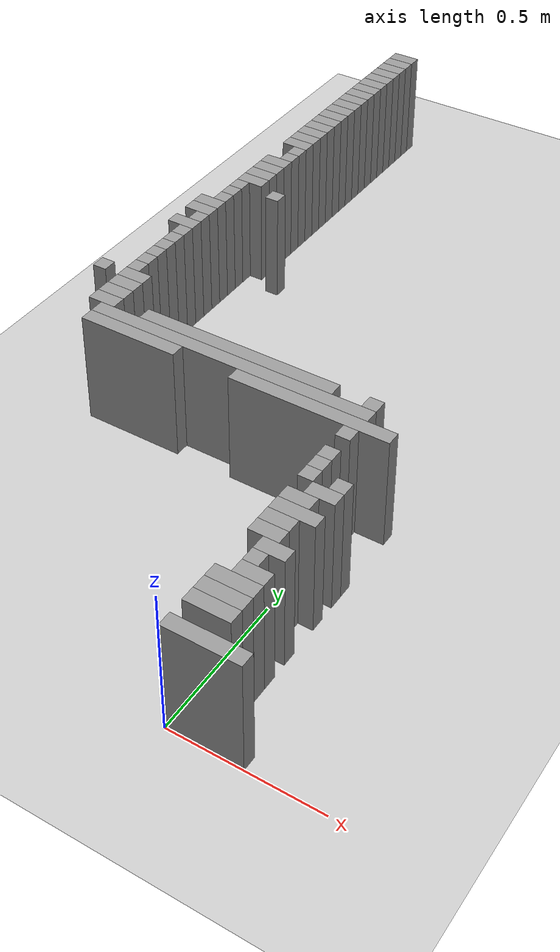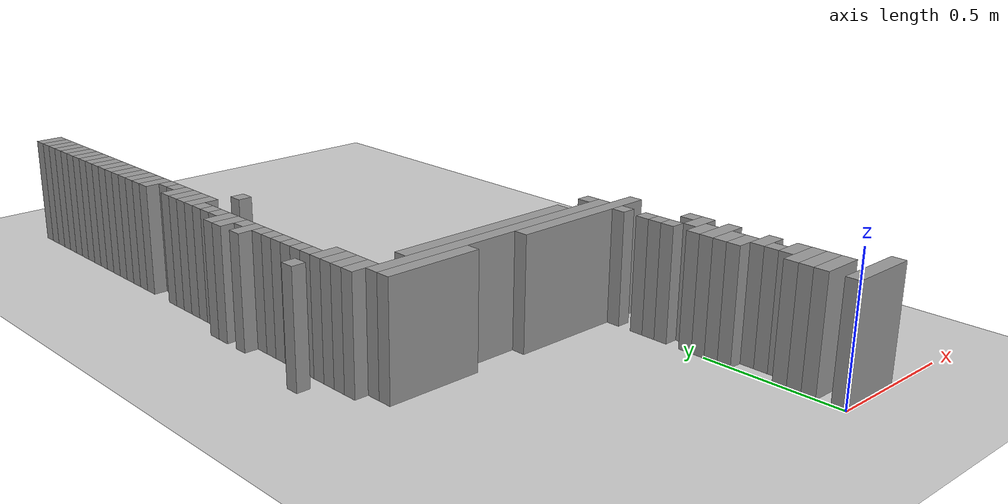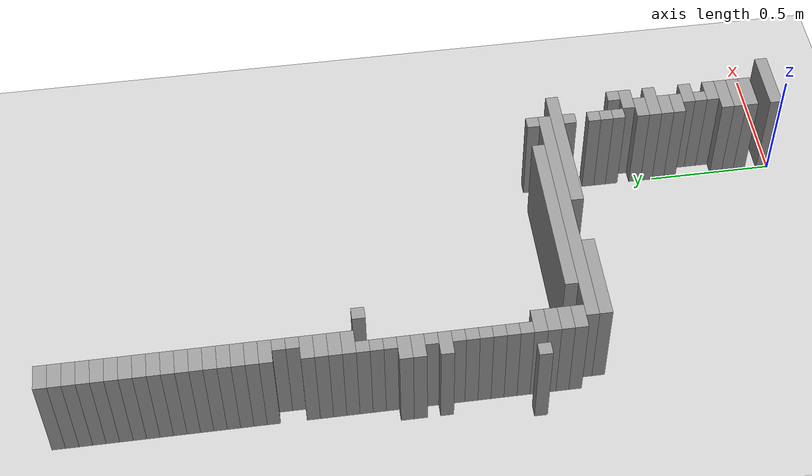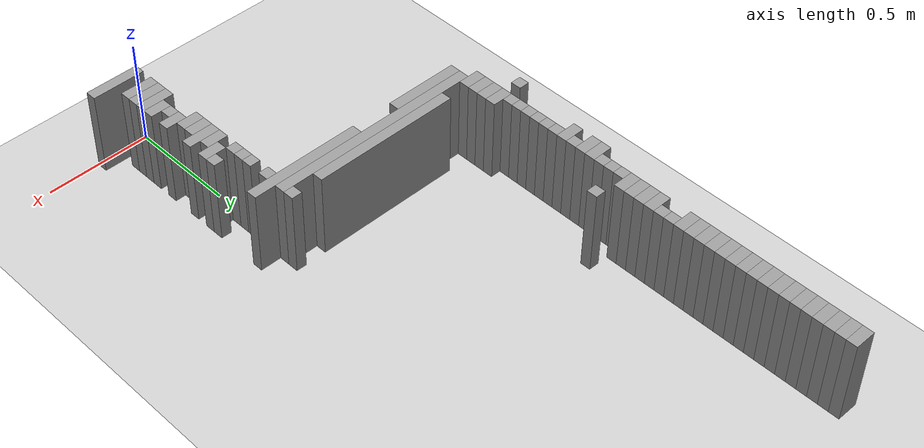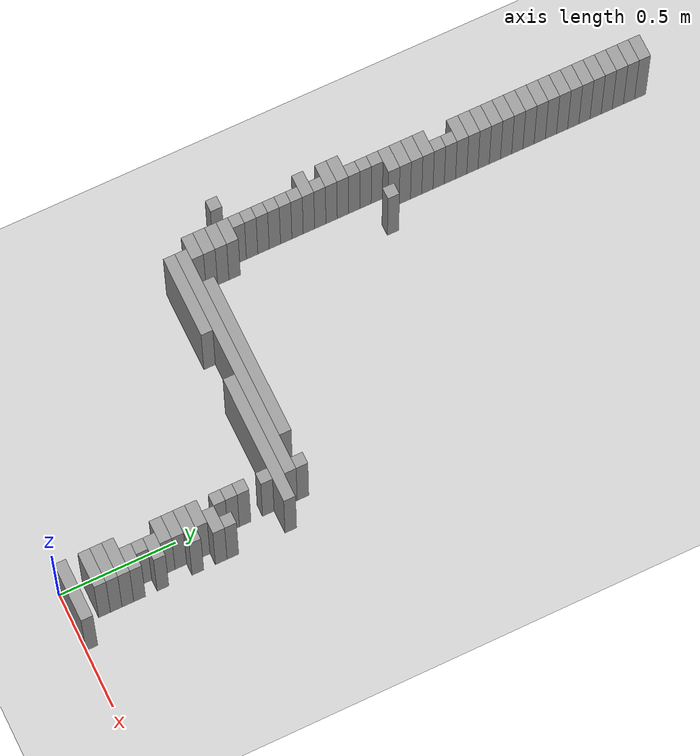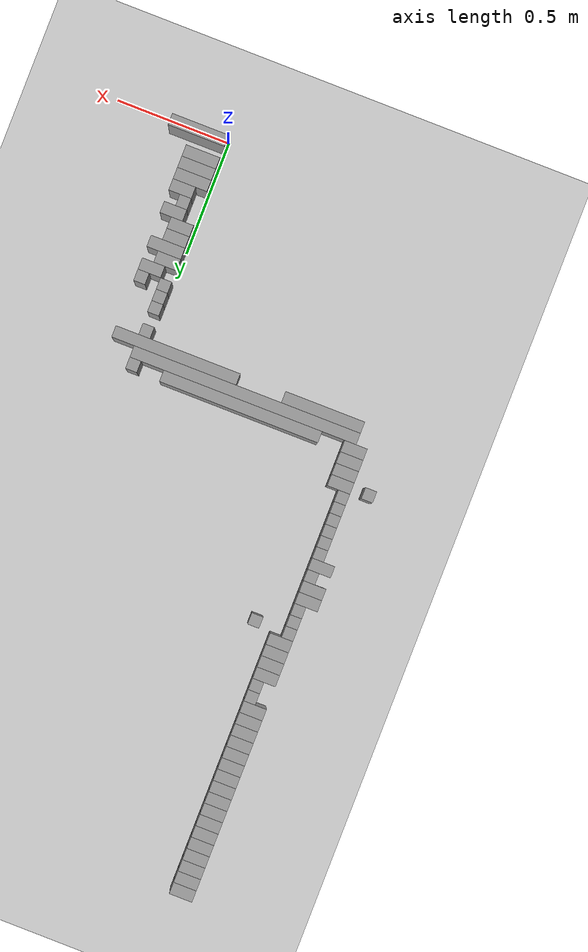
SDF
<sdf version="1.6">
 <world name="parking_mission">
  <include><uri>model://sun</uri></include>
  <include><uri>model://ground_plane</uri></include>
  <model name="wall_191">
   <static>true</static>
   <pose>-0.9500 2.9750 0.2000 0 0 0</pose>
   <link name="link">
    <collision name="collision">
     <geometry><box><size>0.1000 0.0500 0.4000</size></box></geometry>
     <surface>
      <contact><ode><kp>20000.0</kp><kd>10.0</kd><max_vel>0.5</max_vel><min_depth>0.001</min_depth></ode></contact>
      <friction><ode><mu>1.0</mu><mu2>1.0</mu2></ode></friction>
     </surface>
    </collision>
    <visual name="visual">
     <geometry><box><size>0.1000 0.0500 0.4000</size></box></geometry>
     <material>
      <script><name>Gazebo/Grey</name><uri>file://media/materials/scripts/gazebo.material</uri></script>
     </material>
    </visual>
   </link>
  </model>
  <model name="wall_195">
   <static>true</static>
   <pose>-0.9500 2.9250 0.2000 0 0 0</pose>
   <link name="link">
    <collision name="collision">
     <geometry><box><size>0.1000 0.0500 0.4000</size></box></geometry>
     <surface>
      <contact><ode><kp>20000.0</kp><kd>10.0</kd><max_vel>0.5</max_vel><min_depth>0.001</min_depth></ode></contact>
      <friction><ode><mu>1.0</mu><mu2>1.0</mu2></ode></friction>
     </surface>
    </collision>
    <visual name="visual">
     <geometry><box><size>0.1000 0.0500 0.4000</size></box></geometry>
     <material>
      <script><name>Gazebo/Grey</name><uri>file://media/materials/scripts/gazebo.material</uri></script>
     </material>
    </visual>
   </link>
  </model>
  <model name="wall_199">
   <static>true</static>
   <pose>-0.9500 2.8750 0.2000 0 0 0</pose>
   <link name="link">
    <collision name="collision">
     <geometry><box><size>0.1000 0.0500 0.4000</size></box></geometry>
     <surface>
      <contact><ode><kp>20000.0</kp><kd>10.0</kd><max_vel>0.5</max_vel><min_depth>0.001</min_depth></ode></contact>
      <friction><ode><mu>1.0</mu><mu2>1.0</mu2></ode></friction>
     </surface>
    </collision>
    <visual name="visual">
     <geometry><box><size>0.1000 0.0500 0.4000</size></box></geometry>
     <material>
      <script><name>Gazebo/Grey</name><uri>file://media/materials/scripts/gazebo.material</uri></script>
     </material>
    </visual>
   </link>
  </model>
  <model name="wall_204">
   <static>true</static>
   <pose>-0.9500 2.8250 0.2000 0 0 0</pose>
   <link name="link">
    <collision name="collision">
     <geometry><box><size>0.1000 0.0500 0.4000</size></box></geometry>
     <surface>
      <contact><ode><kp>20000.0</kp><kd>10.0</kd><max_vel>0.5</max_vel><min_depth>0.001</min_depth></ode></contact>
      <friction><ode><mu>1.0</mu><mu2>1.0</mu2></ode></friction>
     </surface>
    </collision>
    <visual name="visual">
     <geometry><box><size>0.1000 0.0500 0.4000</size></box></geometry>
     <material>
      <script><name>Gazebo/Grey</name><uri>file://media/materials/scripts/gazebo.material</uri></script>
     </material>
    </visual>
   </link>
  </model>
  <model name="wall_210">
   <static>true</static>
   <pose>-0.9500 2.7750 0.2000 0 0 0</pose>
   <link name="link">
    <collision name="collision">
     <geometry><box><size>0.1000 0.0500 0.4000</size></box></geometry>
     <surface>
      <contact><ode><kp>20000.0</kp><kd>10.0</kd><max_vel>0.5</max_vel><min_depth>0.001</min_depth></ode></contact>
      <friction><ode><mu>1.0</mu><mu2>1.0</mu2></ode></friction>
     </surface>
    </collision>
    <visual name="visual">
     <geometry><box><size>0.1000 0.0500 0.4000</size></box></geometry>
     <material>
      <script><name>Gazebo/Grey</name><uri>file://media/materials/scripts/gazebo.material</uri></script>
     </material>
    </visual>
   </link>
  </model>
  <model name="wall_215">
   <static>true</static>
   <pose>-0.9500 2.7250 0.2000 0 0 0</pose>
   <link name="link">
    <collision name="collision">
     <geometry><box><size>0.1000 0.0500 0.4000</size></box></geometry>
     <surface>
      <contact><ode><kp>20000.0</kp><kd>10.0</kd><max_vel>0.5</max_vel><min_depth>0.001</min_depth></ode></contact>
      <friction><ode><mu>1.0</mu><mu2>1.0</mu2></ode></friction>
     </surface>
    </collision>
    <visual name="visual">
     <geometry><box><size>0.1000 0.0500 0.4000</size></box></geometry>
     <material>
      <script><name>Gazebo/Grey</name><uri>file://media/materials/scripts/gazebo.material</uri></script>
     </material>
    </visual>
   </link>
  </model>
  <model name="wall_220">
   <static>true</static>
   <pose>-0.9500 2.6750 0.2000 0 0 0</pose>
   <link name="link">
    <collision name="collision">
     <geometry><box><size>0.1000 0.0500 0.4000</size></box></geometry>
     <surface>
      <contact><ode><kp>20000.0</kp><kd>10.0</kd><max_vel>0.5</max_vel><min_depth>0.001</min_depth></ode></contact>
      <friction><ode><mu>1.0</mu><mu2>1.0</mu2></ode></friction>
     </surface>
    </collision>
    <visual name="visual">
     <geometry><box><size>0.1000 0.0500 0.4000</size></box></geometry>
     <material>
      <script><name>Gazebo/Grey</name><uri>file://media/materials/scripts/gazebo.material</uri></script>
     </material>
    </visual>
   </link>
  </model>
  <model name="wall_225">
   <static>true</static>
   <pose>-0.9500 2.6250 0.2000 0 0 0</pose>
   <link name="link">
    <collision name="collision">
     <geometry><box><size>0.1000 0.0500 0.4000</size></box></geometry>
     <surface>
      <contact><ode><kp>20000.0</kp><kd>10.0</kd><max_vel>0.5</max_vel><min_depth>0.001</min_depth></ode></contact>
      <friction><ode><mu>1.0</mu><mu2>1.0</mu2></ode></friction>
     </surface>
    </collision>
    <visual name="visual">
     <geometry><box><size>0.1000 0.0500 0.4000</size></box></geometry>
     <material>
      <script><name>Gazebo/Grey</name><uri>file://media/materials/scripts/gazebo.material</uri></script>
     </material>
    </visual>
   </link>
  </model>
  <model name="wall_231">
   <static>true</static>
   <pose>-0.9500 2.5750 0.2000 0 0 0</pose>
   <link name="link">
    <collision name="collision">
     <geometry><box><size>0.1000 0.0500 0.4000</size></box></geometry>
     <surface>
      <contact><ode><kp>20000.0</kp><kd>10.0</kd><max_vel>0.5</max_vel><min_depth>0.001</min_depth></ode></contact>
      <friction><ode><mu>1.0</mu><mu2>1.0</mu2></ode></friction>
     </surface>
    </collision>
    <visual name="visual">
     <geometry><box><size>0.1000 0.0500 0.4000</size></box></geometry>
     <material>
      <script><name>Gazebo/Grey</name><uri>file://media/materials/scripts/gazebo.material</uri></script>
     </material>
    </visual>
   </link>
  </model>
  <model name="wall_236">
   <static>true</static>
   <pose>-0.9500 2.5250 0.2000 0 0 0</pose>
   <link name="link">
    <collision name="collision">
     <geometry><box><size>0.1000 0.0500 0.4000</size></box></geometry>
     <surface>
      <contact><ode><kp>20000.0</kp><kd>10.0</kd><max_vel>0.5</max_vel><min_depth>0.001</min_depth></ode></contact>
      <friction><ode><mu>1.0</mu><mu2>1.0</mu2></ode></friction>
     </surface>
    </collision>
    <visual name="visual">
     <geometry><box><size>0.1000 0.0500 0.4000</size></box></geometry>
     <material>
      <script><name>Gazebo/Grey</name><uri>file://media/materials/scripts/gazebo.material</uri></script>
     </material>
    </visual>
   </link>
  </model>
  <model name="wall_241">
   <static>true</static>
   <pose>-0.9500 2.4750 0.2000 0 0 0</pose>
   <link name="link">
    <collision name="collision">
     <geometry><box><size>0.1000 0.0500 0.4000</size></box></geometry>
     <surface>
      <contact><ode><kp>20000.0</kp><kd>10.0</kd><max_vel>0.5</max_vel><min_depth>0.001</min_depth></ode></contact>
      <friction><ode><mu>1.0</mu><mu2>1.0</mu2></ode></friction>
     </surface>
    </collision>
    <visual name="visual">
     <geometry><box><size>0.1000 0.0500 0.4000</size></box></geometry>
     <material>
      <script><name>Gazebo/Grey</name><uri>file://media/materials/scripts/gazebo.material</uri></script>
     </material>
    </visual>
   </link>
  </model>
  <model name="wall_245">
   <static>true</static>
   <pose>-0.9500 2.4250 0.2000 0 0 0</pose>
   <link name="link">
    <collision name="collision">
     <geometry><box><size>0.1000 0.0500 0.4000</size></box></geometry>
     <surface>
      <contact><ode><kp>20000.0</kp><kd>10.0</kd><max_vel>0.5</max_vel><min_depth>0.001</min_depth></ode></contact>
      <friction><ode><mu>1.0</mu><mu2>1.0</mu2></ode></friction>
     </surface>
    </collision>
    <visual name="visual">
     <geometry><box><size>0.1000 0.0500 0.4000</size></box></geometry>
     <material>
      <script><name>Gazebo/Grey</name><uri>file://media/materials/scripts/gazebo.material</uri></script>
     </material>
    </visual>
   </link>
  </model>
  <model name="wall_249">
   <static>true</static>
   <pose>-0.9500 2.3750 0.2000 0 0 0</pose>
   <link name="link">
    <collision name="collision">
     <geometry><box><size>0.1000 0.0500 0.4000</size></box></geometry>
     <surface>
      <contact><ode><kp>20000.0</kp><kd>10.0</kd><max_vel>0.5</max_vel><min_depth>0.001</min_depth></ode></contact>
      <friction><ode><mu>1.0</mu><mu2>1.0</mu2></ode></friction>
     </surface>
    </collision>
    <visual name="visual">
     <geometry><box><size>0.1000 0.0500 0.4000</size></box></geometry>
     <material>
      <script><name>Gazebo/Grey</name><uri>file://media/materials/scripts/gazebo.material</uri></script>
     </material>
    </visual>
   </link>
  </model>
  <model name="wall_252">
   <static>true</static>
   <pose>-0.9500 2.3250 0.2000 0 0 0</pose>
   <link name="link">
    <collision name="collision">
     <geometry><box><size>0.1000 0.0500 0.4000</size></box></geometry>
     <surface>
      <contact><ode><kp>20000.0</kp><kd>10.0</kd><max_vel>0.5</max_vel><min_depth>0.001</min_depth></ode></contact>
      <friction><ode><mu>1.0</mu><mu2>1.0</mu2></ode></friction>
     </surface>
    </collision>
    <visual name="visual">
     <geometry><box><size>0.1000 0.0500 0.4000</size></box></geometry>
     <material>
      <script><name>Gazebo/Grey</name><uri>file://media/materials/scripts/gazebo.material</uri></script>
     </material>
    </visual>
   </link>
  </model>
  <model name="wall_255">
   <static>true</static>
   <pose>-0.9500 2.2750 0.2000 0 0 0</pose>
   <link name="link">
    <collision name="collision">
     <geometry><box><size>0.1000 0.0500 0.4000</size></box></geometry>
     <surface>
      <contact><ode><kp>20000.0</kp><kd>10.0</kd><max_vel>0.5</max_vel><min_depth>0.001</min_depth></ode></contact>
      <friction><ode><mu>1.0</mu><mu2>1.0</mu2></ode></friction>
     </surface>
    </collision>
    <visual name="visual">
     <geometry><box><size>0.1000 0.0500 0.4000</size></box></geometry>
     <material>
      <script><name>Gazebo/Grey</name><uri>file://media/materials/scripts/gazebo.material</uri></script>
     </material>
    </visual>
   </link>
  </model>
  <model name="wall_258">
   <static>true</static>
   <pose>-0.9500 2.2250 0.2000 0 0 0</pose>
   <link name="link">
    <collision name="collision">
     <geometry><box><size>0.1000 0.0500 0.4000</size></box></geometry>
     <surface>
      <contact><ode><kp>20000.0</kp><kd>10.0</kd><max_vel>0.5</max_vel><min_depth>0.001</min_depth></ode></contact>
      <friction><ode><mu>1.0</mu><mu2>1.0</mu2></ode></friction>
     </surface>
    </collision>
    <visual name="visual">
     <geometry><box><size>0.1000 0.0500 0.4000</size></box></geometry>
     <material>
      <script><name>Gazebo/Grey</name><uri>file://media/materials/scripts/gazebo.material</uri></script>
     </material>
    </visual>
   </link>
  </model>
  <model name="wall_262">
   <static>true</static>
   <pose>-0.9500 2.1750 0.2000 0 0 0</pose>
   <link name="link">
    <collision name="collision">
     <geometry><box><size>0.1000 0.0500 0.4000</size></box></geometry>
     <surface>
      <contact><ode><kp>20000.0</kp><kd>10.0</kd><max_vel>0.5</max_vel><min_depth>0.001</min_depth></ode></contact>
      <friction><ode><mu>1.0</mu><mu2>1.0</mu2></ode></friction>
     </surface>
    </collision>
    <visual name="visual">
     <geometry><box><size>0.1000 0.0500 0.4000</size></box></geometry>
     <material>
      <script><name>Gazebo/Grey</name><uri>file://media/materials/scripts/gazebo.material</uri></script>
     </material>
    </visual>
   </link>
  </model>
  <model name="wall_265">
   <static>true</static>
   <pose>-0.9250 2.1250 0.2000 0 0 0</pose>
   <link name="link">
    <collision name="collision">
     <geometry><box><size>0.0500 0.0500 0.4000</size></box></geometry>
     <surface>
      <contact><ode><kp>20000.0</kp><kd>10.0</kd><max_vel>0.5</max_vel><min_depth>0.001</min_depth></ode></contact>
      <friction><ode><mu>1.0</mu><mu2>1.0</mu2></ode></friction>
     </surface>
    </collision>
    <visual name="visual">
     <geometry><box><size>0.0500 0.0500 0.4000</size></box></geometry>
     <material>
      <script><name>Gazebo/Grey</name><uri>file://media/materials/scripts/gazebo.material</uri></script>
     </material>
    </visual>
   </link>
  </model>
  <model name="wall_268">
   <static>true</static>
   <pose>-0.9250 2.0750 0.2000 0 0 0</pose>
   <link name="link">
    <collision name="collision">
     <geometry><box><size>0.0500 0.0500 0.4000</size></box></geometry>
     <surface>
      <contact><ode><kp>20000.0</kp><kd>10.0</kd><max_vel>0.5</max_vel><min_depth>0.001</min_depth></ode></contact>
      <friction><ode><mu>1.0</mu><mu2>1.0</mu2></ode></friction>
     </surface>
    </collision>
    <visual name="visual">
     <geometry><box><size>0.0500 0.0500 0.4000</size></box></geometry>
     <material>
      <script><name>Gazebo/Grey</name><uri>file://media/materials/scripts/gazebo.material</uri></script>
     </material>
    </visual>
   </link>
  </model>
  <model name="wall_271">
   <static>true</static>
   <pose>-0.9500 2.0250 0.2000 0 0 0</pose>
   <link name="link">
    <collision name="collision">
     <geometry><box><size>0.1000 0.0500 0.4000</size></box></geometry>
     <surface>
      <contact><ode><kp>20000.0</kp><kd>10.0</kd><max_vel>0.5</max_vel><min_depth>0.001</min_depth></ode></contact>
      <friction><ode><mu>1.0</mu><mu2>1.0</mu2></ode></friction>
     </surface>
    </collision>
    <visual name="visual">
     <geometry><box><size>0.1000 0.0500 0.4000</size></box></geometry>
     <material>
      <script><name>Gazebo/Grey</name><uri>file://media/materials/scripts/gazebo.material</uri></script>
     </material>
    </visual>
   </link>
  </model>
  <model name="wall_274">
   <static>true</static>
   <pose>-0.9500 1.9750 0.2000 0 0 0</pose>
   <link name="link">
    <collision name="collision">
     <geometry><box><size>0.1000 0.0500 0.4000</size></box></geometry>
     <surface>
      <contact><ode><kp>20000.0</kp><kd>10.0</kd><max_vel>0.5</max_vel><min_depth>0.001</min_depth></ode></contact>
      <friction><ode><mu>1.0</mu><mu2>1.0</mu2></ode></friction>
     </surface>
    </collision>
    <visual name="visual">
     <geometry><box><size>0.1000 0.0500 0.4000</size></box></geometry>
     <material>
      <script><name>Gazebo/Grey</name><uri>file://media/materials/scripts/gazebo.material</uri></script>
     </material>
    </visual>
   </link>
  </model>
  <model name="wall_278">
   <static>true</static>
   <pose>-0.9500 1.9250 0.2000 0 0 0</pose>
   <link name="link">
    <collision name="collision">
     <geometry><box><size>0.1000 0.0500 0.4000</size></box></geometry>
     <surface>
      <contact><ode><kp>20000.0</kp><kd>10.0</kd><max_vel>0.5</max_vel><min_depth>0.001</min_depth></ode></contact>
      <friction><ode><mu>1.0</mu><mu2>1.0</mu2></ode></friction>
     </surface>
    </collision>
    <visual name="visual">
     <geometry><box><size>0.1000 0.0500 0.4000</size></box></geometry>
     <material>
      <script><name>Gazebo/Grey</name><uri>file://media/materials/scripts/gazebo.material</uri></script>
     </material>
    </visual>
   </link>
  </model>
  <model name="wall_285">
   <static>true</static>
   <pose>-0.9500 1.8750 0.2000 0 0 0</pose>
   <link name="link">
    <collision name="collision">
     <geometry><box><size>0.1000 0.0500 0.4000</size></box></geometry>
     <surface>
      <contact><ode><kp>20000.0</kp><kd>10.0</kd><max_vel>0.5</max_vel><min_depth>0.001</min_depth></ode></contact>
      <friction><ode><mu>1.0</mu><mu2>1.0</mu2></ode></friction>
     </surface>
    </collision>
    <visual name="visual">
     <geometry><box><size>0.1000 0.0500 0.4000</size></box></geometry>
     <material>
      <script><name>Gazebo/Grey</name><uri>file://media/materials/scripts/gazebo.material</uri></script>
     </material>
    </visual>
   </link>
  </model>
  <model name="wall_290">
   <static>true</static>
   <pose>-0.9750 1.8250 0.2000 0 0 0</pose>
   <link name="link">
    <collision name="collision">
     <geometry><box><size>0.0500 0.0500 0.4000</size></box></geometry>
     <surface>
      <contact><ode><kp>20000.0</kp><kd>10.0</kd><max_vel>0.5</max_vel><min_depth>0.001</min_depth></ode></contact>
      <friction><ode><mu>1.0</mu><mu2>1.0</mu2></ode></friction>
     </surface>
    </collision>
    <visual name="visual">
     <geometry><box><size>0.0500 0.0500 0.4000</size></box></geometry>
     <material>
      <script><name>Gazebo/Grey</name><uri>file://media/materials/scripts/gazebo.material</uri></script>
     </material>
    </visual>
   </link>
  </model>
  <model name="wall_291">
   <static>true</static>
   <pose>-0.8250 1.8250 0.2000 0 0 0</pose>
   <link name="link">
    <collision name="collision">
     <geometry><box><size>0.0500 0.0500 0.4000</size></box></geometry>
     <surface>
      <contact><ode><kp>20000.0</kp><kd>10.0</kd><max_vel>0.5</max_vel><min_depth>0.001</min_depth></ode></contact>
      <friction><ode><mu>1.0</mu><mu2>1.0</mu2></ode></friction>
     </surface>
    </collision>
    <visual name="visual">
     <geometry><box><size>0.0500 0.0500 0.4000</size></box></geometry>
     <material>
      <script><name>Gazebo/Grey</name><uri>file://media/materials/scripts/gazebo.material</uri></script>
     </material>
    </visual>
   </link>
  </model>
  <model name="wall_294">
   <static>true</static>
   <pose>-0.9750 1.7750 0.2000 0 0 0</pose>
   <link name="link">
    <collision name="collision">
     <geometry><box><size>0.0500 0.0500 0.4000</size></box></geometry>
     <surface>
      <contact><ode><kp>20000.0</kp><kd>10.0</kd><max_vel>0.5</max_vel><min_depth>0.001</min_depth></ode></contact>
      <friction><ode><mu>1.0</mu><mu2>1.0</mu2></ode></friction>
     </surface>
    </collision>
    <visual name="visual">
     <geometry><box><size>0.0500 0.0500 0.4000</size></box></geometry>
     <material>
      <script><name>Gazebo/Grey</name><uri>file://media/materials/scripts/gazebo.material</uri></script>
     </material>
    </visual>
   </link>
  </model>
  <model name="wall_298">
   <static>true</static>
   <pose>-0.9750 1.7250 0.2000 0 0 0</pose>
   <link name="link">
    <collision name="collision">
     <geometry><box><size>0.0500 0.0500 0.4000</size></box></geometry>
     <surface>
      <contact><ode><kp>20000.0</kp><kd>10.0</kd><max_vel>0.5</max_vel><min_depth>0.001</min_depth></ode></contact>
      <friction><ode><mu>1.0</mu><mu2>1.0</mu2></ode></friction>
     </surface>
    </collision>
    <visual name="visual">
     <geometry><box><size>0.0500 0.0500 0.4000</size></box></geometry>
     <material>
      <script><name>Gazebo/Grey</name><uri>file://media/materials/scripts/gazebo.material</uri></script>
     </material>
    </visual>
   </link>
  </model>
  <model name="wall_301">
   <static>true</static>
   <pose>-1.0000 1.6750 0.2000 0 0 0</pose>
   <link name="link">
    <collision name="collision">
     <geometry><box><size>0.1000 0.0500 0.4000</size></box></geometry>
     <surface>
      <contact><ode><kp>20000.0</kp><kd>10.0</kd><max_vel>0.5</max_vel><min_depth>0.001</min_depth></ode></contact>
      <friction><ode><mu>1.0</mu><mu2>1.0</mu2></ode></friction>
     </surface>
    </collision>
    <visual name="visual">
     <geometry><box><size>0.1000 0.0500 0.4000</size></box></geometry>
     <material>
      <script><name>Gazebo/Grey</name><uri>file://media/materials/scripts/gazebo.material</uri></script>
     </material>
    </visual>
   </link>
  </model>
  <model name="wall_303">
   <static>true</static>
   <pose>-1.0000 1.6250 0.2000 0 0 0</pose>
   <link name="link">
    <collision name="collision">
     <geometry><box><size>0.1000 0.0500 0.4000</size></box></geometry>
     <surface>
      <contact><ode><kp>20000.0</kp><kd>10.0</kd><max_vel>0.5</max_vel><min_depth>0.001</min_depth></ode></contact>
      <friction><ode><mu>1.0</mu><mu2>1.0</mu2></ode></friction>
     </surface>
    </collision>
    <visual name="visual">
     <geometry><box><size>0.1000 0.0500 0.4000</size></box></geometry>
     <material>
      <script><name>Gazebo/Grey</name><uri>file://media/materials/scripts/gazebo.material</uri></script>
     </material>
    </visual>
   </link>
  </model>
  <model name="wall_305">
   <static>true</static>
   <pose>-0.9750 1.5750 0.2000 0 0 0</pose>
   <link name="link">
    <collision name="collision">
     <geometry><box><size>0.0500 0.0500 0.4000</size></box></geometry>
     <surface>
      <contact><ode><kp>20000.0</kp><kd>10.0</kd><max_vel>0.5</max_vel><min_depth>0.001</min_depth></ode></contact>
      <friction><ode><mu>1.0</mu><mu2>1.0</mu2></ode></friction>
     </surface>
    </collision>
    <visual name="visual">
     <geometry><box><size>0.0500 0.0500 0.4000</size></box></geometry>
     <material>
      <script><name>Gazebo/Grey</name><uri>file://media/materials/scripts/gazebo.material</uri></script>
     </material>
    </visual>
   </link>
  </model>
  <model name="wall_307">
   <static>true</static>
   <pose>-1.0000 1.5250 0.2000 0 0 0</pose>
   <link name="link">
    <collision name="collision">
     <geometry><box><size>0.1000 0.0500 0.4000</size></box></geometry>
     <surface>
      <contact><ode><kp>20000.0</kp><kd>10.0</kd><max_vel>0.5</max_vel><min_depth>0.001</min_depth></ode></contact>
      <friction><ode><mu>1.0</mu><mu2>1.0</mu2></ode></friction>
     </surface>
    </collision>
    <visual name="visual">
     <geometry><box><size>0.1000 0.0500 0.4000</size></box></geometry>
     <material>
      <script><name>Gazebo/Grey</name><uri>file://media/materials/scripts/gazebo.material</uri></script>
     </material>
    </visual>
   </link>
  </model>
  <model name="wall_309">
   <static>true</static>
   <pose>-0.9750 1.4750 0.2000 0 0 0</pose>
   <link name="link">
    <collision name="collision">
     <geometry><box><size>0.0500 0.0500 0.4000</size></box></geometry>
     <surface>
      <contact><ode><kp>20000.0</kp><kd>10.0</kd><max_vel>0.5</max_vel><min_depth>0.001</min_depth></ode></contact>
      <friction><ode><mu>1.0</mu><mu2>1.0</mu2></ode></friction>
     </surface>
    </collision>
    <visual name="visual">
     <geometry><box><size>0.0500 0.0500 0.4000</size></box></geometry>
     <material>
      <script><name>Gazebo/Grey</name><uri>file://media/materials/scripts/gazebo.material</uri></script>
     </material>
    </visual>
   </link>
  </model>
  <model name="wall_311">
   <static>true</static>
   <pose>-0.9750 1.4250 0.2000 0 0 0</pose>
   <link name="link">
    <collision name="collision">
     <geometry><box><size>0.0500 0.0500 0.4000</size></box></geometry>
     <surface>
      <contact><ode><kp>20000.0</kp><kd>10.0</kd><max_vel>0.5</max_vel><min_depth>0.001</min_depth></ode></contact>
      <friction><ode><mu>1.0</mu><mu2>1.0</mu2></ode></friction>
     </surface>
    </collision>
    <visual name="visual">
     <geometry><box><size>0.0500 0.0500 0.4000</size></box></geometry>
     <material>
      <script><name>Gazebo/Grey</name><uri>file://media/materials/scripts/gazebo.material</uri></script>
     </material>
    </visual>
   </link>
  </model>
  <model name="wall_313">
   <static>true</static>
   <pose>-0.9750 1.3750 0.2000 0 0 0</pose>
   <link name="link">
    <collision name="collision">
     <geometry><box><size>0.0500 0.0500 0.4000</size></box></geometry>
     <surface>
      <contact><ode><kp>20000.0</kp><kd>10.0</kd><max_vel>0.5</max_vel><min_depth>0.001</min_depth></ode></contact>
      <friction><ode><mu>1.0</mu><mu2>1.0</mu2></ode></friction>
     </surface>
    </collision>
    <visual name="visual">
     <geometry><box><size>0.0500 0.0500 0.4000</size></box></geometry>
     <material>
      <script><name>Gazebo/Grey</name><uri>file://media/materials/scripts/gazebo.material</uri></script>
     </material>
    </visual>
   </link>
  </model>
  <model name="wall_315">
   <static>true</static>
   <pose>-0.9750 1.3250 0.2000 0 0 0</pose>
   <link name="link">
    <collision name="collision">
     <geometry><box><size>0.0500 0.0500 0.4000</size></box></geometry>
     <surface>
      <contact><ode><kp>20000.0</kp><kd>10.0</kd><max_vel>0.5</max_vel><min_depth>0.001</min_depth></ode></contact>
      <friction><ode><mu>1.0</mu><mu2>1.0</mu2></ode></friction>
     </surface>
    </collision>
    <visual name="visual">
     <geometry><box><size>0.0500 0.0500 0.4000</size></box></geometry>
     <material>
      <script><name>Gazebo/Grey</name><uri>file://media/materials/scripts/gazebo.material</uri></script>
     </material>
    </visual>
   </link>
  </model>
  <model name="wall_317">
   <static>true</static>
   <pose>-0.9750 1.2750 0.2000 0 0 0</pose>
   <link name="link">
    <collision name="collision">
     <geometry><box><size>0.0500 0.0500 0.4000</size></box></geometry>
     <surface>
      <contact><ode><kp>20000.0</kp><kd>10.0</kd><max_vel>0.5</max_vel><min_depth>0.001</min_depth></ode></contact>
      <friction><ode><mu>1.0</mu><mu2>1.0</mu2></ode></friction>
     </surface>
    </collision>
    <visual name="visual">
     <geometry><box><size>0.0500 0.0500 0.4000</size></box></geometry>
     <material>
      <script><name>Gazebo/Grey</name><uri>file://media/materials/scripts/gazebo.material</uri></script>
     </material>
    </visual>
   </link>
  </model>
  <model name="wall_320">
   <static>true</static>
   <pose>-0.9750 1.2250 0.2000 0 0 0</pose>
   <link name="link">
    <collision name="collision">
     <geometry><box><size>0.0500 0.0500 0.4000</size></box></geometry>
     <surface>
      <contact><ode><kp>20000.0</kp><kd>10.0</kd><max_vel>0.5</max_vel><min_depth>0.001</min_depth></ode></contact>
      <friction><ode><mu>1.0</mu><mu2>1.0</mu2></ode></friction>
     </surface>
    </collision>
    <visual name="visual">
     <geometry><box><size>0.0500 0.0500 0.4000</size></box></geometry>
     <material>
      <script><name>Gazebo/Grey</name><uri>file://media/materials/scripts/gazebo.material</uri></script>
     </material>
    </visual>
   </link>
  </model>
  <model name="wall_323">
   <static>true</static>
   <pose>-1.0750 1.1750 0.2000 0 0 0</pose>
   <link name="link">
    <collision name="collision">
     <geometry><box><size>0.0500 0.0500 0.4000</size></box></geometry>
     <surface>
      <contact><ode><kp>20000.0</kp><kd>10.0</kd><max_vel>0.5</max_vel><min_depth>0.001</min_depth></ode></contact>
      <friction><ode><mu>1.0</mu><mu2>1.0</mu2></ode></friction>
     </surface>
    </collision>
    <visual name="visual">
     <geometry><box><size>0.0500 0.0500 0.4000</size></box></geometry>
     <material>
      <script><name>Gazebo/Grey</name><uri>file://media/materials/scripts/gazebo.material</uri></script>
     </material>
    </visual>
   </link>
  </model>
  <model name="wall_324">
   <static>true</static>
   <pose>-0.9500 1.1750 0.2000 0 0 0</pose>
   <link name="link">
    <collision name="collision">
     <geometry><box><size>0.1000 0.0500 0.4000</size></box></geometry>
     <surface>
      <contact><ode><kp>20000.0</kp><kd>10.0</kd><max_vel>0.5</max_vel><min_depth>0.001</min_depth></ode></contact>
      <friction><ode><mu>1.0</mu><mu2>1.0</mu2></ode></friction>
     </surface>
    </collision>
    <visual name="visual">
     <geometry><box><size>0.1000 0.0500 0.4000</size></box></geometry>
     <material>
      <script><name>Gazebo/Grey</name><uri>file://media/materials/scripts/gazebo.material</uri></script>
     </material>
    </visual>
   </link>
  </model>
  <model name="wall_327">
   <static>true</static>
   <pose>-0.9500 1.1250 0.2000 0 0 0</pose>
   <link name="link">
    <collision name="collision">
     <geometry><box><size>0.1000 0.0500 0.4000</size></box></geometry>
     <surface>
      <contact><ode><kp>20000.0</kp><kd>10.0</kd><max_vel>0.5</max_vel><min_depth>0.001</min_depth></ode></contact>
      <friction><ode><mu>1.0</mu><mu2>1.0</mu2></ode></friction>
     </surface>
    </collision>
    <visual name="visual">
     <geometry><box><size>0.1000 0.0500 0.4000</size></box></geometry>
     <material>
      <script><name>Gazebo/Grey</name><uri>file://media/materials/scripts/gazebo.material</uri></script>
     </material>
    </visual>
   </link>
  </model>
  <model name="wall_329">
   <static>true</static>
   <pose>-0.9500 1.0750 0.2000 0 0 0</pose>
   <link name="link">
    <collision name="collision">
     <geometry><box><size>0.1000 0.0500 0.4000</size></box></geometry>
     <surface>
      <contact><ode><kp>20000.0</kp><kd>10.0</kd><max_vel>0.5</max_vel><min_depth>0.001</min_depth></ode></contact>
      <friction><ode><mu>1.0</mu><mu2>1.0</mu2></ode></friction>
     </surface>
    </collision>
    <visual name="visual">
     <geometry><box><size>0.1000 0.0500 0.4000</size></box></geometry>
     <material>
      <script><name>Gazebo/Grey</name><uri>file://media/materials/scripts/gazebo.material</uri></script>
     </material>
    </visual>
   </link>
  </model>
  <model name="wall_331">
   <static>true</static>
   <pose>-0.9500 1.0250 0.2000 0 0 0</pose>
   <link name="link">
    <collision name="collision">
     <geometry><box><size>0.1000 0.0500 0.4000</size></box></geometry>
     <surface>
      <contact><ode><kp>20000.0</kp><kd>10.0</kd><max_vel>0.5</max_vel><min_depth>0.001</min_depth></ode></contact>
      <friction><ode><mu>1.0</mu><mu2>1.0</mu2></ode></friction>
     </surface>
    </collision>
    <visual name="visual">
     <geometry><box><size>0.1000 0.0500 0.4000</size></box></geometry>
     <material>
      <script><name>Gazebo/Grey</name><uri>file://media/materials/scripts/gazebo.material</uri></script>
     </material>
    </visual>
   </link>
  </model>
  <model name="wall_332">
   <static>true</static>
   <pose>-0.4500 1.0250 0.2000 0 0 0</pose>
   <link name="link">
    <collision name="collision">
     <geometry><box><size>0.7000 0.0500 0.4000</size></box></geometry>
     <surface>
      <contact><ode><kp>20000.0</kp><kd>10.0</kd><max_vel>0.5</max_vel><min_depth>0.001</min_depth></ode></contact>
      <friction><ode><mu>1.0</mu><mu2>1.0</mu2></ode></friction>
     </surface>
    </collision>
    <visual name="visual">
     <geometry><box><size>0.7000 0.0500 0.4000</size></box></geometry>
     <material>
      <script><name>Gazebo/Grey</name><uri>file://media/materials/scripts/gazebo.material</uri></script>
     </material>
    </visual>
   </link>
  </model>
  <model name="wall_333">
   <static>true</static>
   <pose>0.0250 1.0250 0.2000 0 0 0</pose>
   <link name="link">
    <collision name="collision">
     <geometry><box><size>0.0500 0.0500 0.4000</size></box></geometry>
     <surface>
      <contact><ode><kp>20000.0</kp><kd>10.0</kd><max_vel>0.5</max_vel><min_depth>0.001</min_depth></ode></contact>
      <friction><ode><mu>1.0</mu><mu2>1.0</mu2></ode></friction>
     </surface>
    </collision>
    <visual name="visual">
     <geometry><box><size>0.0500 0.0500 0.4000</size></box></geometry>
     <material>
      <script><name>Gazebo/Grey</name><uri>file://media/materials/scripts/gazebo.material</uri></script>
     </material>
    </visual>
   </link>
  </model>
  <model name="wall_335">
   <static>true</static>
   <pose>-0.4500 0.9750 0.2000 0 0 0</pose>
   <link name="link">
    <collision name="collision">
     <geometry><box><size>1.0000 0.0500 0.4000</size></box></geometry>
     <surface>
      <contact><ode><kp>20000.0</kp><kd>10.0</kd><max_vel>0.5</max_vel><min_depth>0.001</min_depth></ode></contact>
      <friction><ode><mu>1.0</mu><mu2>1.0</mu2></ode></friction>
     </surface>
    </collision>
    <visual name="visual">
     <geometry><box><size>1.0000 0.0500 0.4000</size></box></geometry>
     <material>
      <script><name>Gazebo/Grey</name><uri>file://media/materials/scripts/gazebo.material</uri></script>
     </material>
    </visual>
   </link>
  </model>
  <model name="wall_338">
   <static>true</static>
   <pose>-0.7750 0.9250 0.2000 0 0 0</pose>
   <link name="link">
    <collision name="collision">
     <geometry><box><size>0.3500 0.0500 0.4000</size></box></geometry>
     <surface>
      <contact><ode><kp>20000.0</kp><kd>10.0</kd><max_vel>0.5</max_vel><min_depth>0.001</min_depth></ode></contact>
      <friction><ode><mu>1.0</mu><mu2>1.0</mu2></ode></friction>
     </surface>
    </collision>
    <visual name="visual">
     <geometry><box><size>0.3500 0.0500 0.4000</size></box></geometry>
     <material>
      <script><name>Gazebo/Grey</name><uri>file://media/materials/scripts/gazebo.material</uri></script>
     </material>
    </visual>
   </link>
  </model>
  <model name="wall_339">
   <static>true</static>
   <pose>-0.1250 0.9250 0.2000 0 0 0</pose>
   <link name="link">
    <collision name="collision">
     <geometry><box><size>0.5500 0.0500 0.4000</size></box></geometry>
     <surface>
      <contact><ode><kp>20000.0</kp><kd>10.0</kd><max_vel>0.5</max_vel><min_depth>0.001</min_depth></ode></contact>
      <friction><ode><mu>1.0</mu><mu2>1.0</mu2></ode></friction>
     </surface>
    </collision>
    <visual name="visual">
     <geometry><box><size>0.5500 0.0500 0.4000</size></box></geometry>
     <material>
      <script><name>Gazebo/Grey</name><uri>file://media/materials/scripts/gazebo.material</uri></script>
     </material>
    </visual>
   </link>
  </model>
  <model name="wall_341">
   <static>true</static>
   <pose>0.0250 0.8750 0.2000 0 0 0</pose>
   <link name="link">
    <collision name="collision">
     <geometry><box><size>0.0500 0.0500 0.4000</size></box></geometry>
     <surface>
      <contact><ode><kp>20000.0</kp><kd>10.0</kd><max_vel>0.5</max_vel><min_depth>0.001</min_depth></ode></contact>
      <friction><ode><mu>1.0</mu><mu2>1.0</mu2></ode></friction>
     </surface>
    </collision>
    <visual name="visual">
     <geometry><box><size>0.0500 0.0500 0.4000</size></box></geometry>
     <material>
      <script><name>Gazebo/Grey</name><uri>file://media/materials/scripts/gazebo.material</uri></script>
     </material>
    </visual>
   </link>
  </model>
  <model name="wall_346">
   <static>true</static>
   <pose>0.0250 0.7750 0.2000 0 0 0</pose>
   <link name="link">
    <collision name="collision">
     <geometry><box><size>0.0500 0.0500 0.4000</size></box></geometry>
     <surface>
      <contact><ode><kp>20000.0</kp><kd>10.0</kd><max_vel>0.5</max_vel><min_depth>0.001</min_depth></ode></contact>
      <friction><ode><mu>1.0</mu><mu2>1.0</mu2></ode></friction>
     </surface>
    </collision>
    <visual name="visual">
     <geometry><box><size>0.0500 0.0500 0.4000</size></box></geometry>
     <material>
      <script><name>Gazebo/Grey</name><uri>file://media/materials/scripts/gazebo.material</uri></script>
     </material>
    </visual>
   </link>
  </model>
  <model name="wall_349">
   <static>true</static>
   <pose>0.0250 0.7250 0.2000 0 0 0</pose>
   <link name="link">
    <collision name="collision">
     <geometry><box><size>0.0500 0.0500 0.4000</size></box></geometry>
     <surface>
      <contact><ode><kp>20000.0</kp><kd>10.0</kd><max_vel>0.5</max_vel><min_depth>0.001</min_depth></ode></contact>
      <friction><ode><mu>1.0</mu><mu2>1.0</mu2></ode></friction>
     </surface>
    </collision>
    <visual name="visual">
     <geometry><box><size>0.0500 0.0500 0.4000</size></box></geometry>
     <material>
      <script><name>Gazebo/Grey</name><uri>file://media/materials/scripts/gazebo.material</uri></script>
     </material>
    </visual>
   </link>
  </model>
  <model name="wall_352">
   <static>true</static>
   <pose>0.0250 0.6750 0.2000 0 0 0</pose>
   <link name="link">
    <collision name="collision">
     <geometry><box><size>0.0500 0.0500 0.4000</size></box></geometry>
     <surface>
      <contact><ode><kp>20000.0</kp><kd>10.0</kd><max_vel>0.5</max_vel><min_depth>0.001</min_depth></ode></contact>
      <friction><ode><mu>1.0</mu><mu2>1.0</mu2></ode></friction>
     </surface>
    </collision>
    <visual name="visual">
     <geometry><box><size>0.0500 0.0500 0.4000</size></box></geometry>
     <material>
      <script><name>Gazebo/Grey</name><uri>file://media/materials/scripts/gazebo.material</uri></script>
     </material>
    </visual>
   </link>
  </model>
  <model name="wall_353">
   <static>true</static>
   <pose>0.1250 0.6750 0.2000 0 0 0</pose>
   <link name="link">
    <collision name="collision">
     <geometry><box><size>0.0500 0.0500 0.4000</size></box></geometry>
     <surface>
      <contact><ode><kp>20000.0</kp><kd>10.0</kd><max_vel>0.5</max_vel><min_depth>0.001</min_depth></ode></contact>
      <friction><ode><mu>1.0</mu><mu2>1.0</mu2></ode></friction>
     </surface>
    </collision>
    <visual name="visual">
     <geometry><box><size>0.0500 0.0500 0.4000</size></box></geometry>
     <material>
      <script><name>Gazebo/Grey</name><uri>file://media/materials/scripts/gazebo.material</uri></script>
     </material>
    </visual>
   </link>
  </model>
  <model name="wall_355">
   <static>true</static>
   <pose>0.1000 0.6250 0.2000 0 0 0</pose>
   <link name="link">
    <collision name="collision">
     <geometry><box><size>0.1000 0.0500 0.4000</size></box></geometry>
     <surface>
      <contact><ode><kp>20000.0</kp><kd>10.0</kd><max_vel>0.5</max_vel><min_depth>0.001</min_depth></ode></contact>
      <friction><ode><mu>1.0</mu><mu2>1.0</mu2></ode></friction>
     </surface>
    </collision>
    <visual name="visual">
     <geometry><box><size>0.1000 0.0500 0.4000</size></box></geometry>
     <material>
      <script><name>Gazebo/Grey</name><uri>file://media/materials/scripts/gazebo.material</uri></script>
     </material>
    </visual>
   </link>
  </model>
  <model name="wall_357">
   <static>true</static>
   <pose>0.0500 0.5750 0.2000 0 0 0</pose>
   <link name="link">
    <collision name="collision">
     <geometry><box><size>0.1000 0.0500 0.4000</size></box></geometry>
     <surface>
      <contact><ode><kp>20000.0</kp><kd>10.0</kd><max_vel>0.5</max_vel><min_depth>0.001</min_depth></ode></contact>
      <friction><ode><mu>1.0</mu><mu2>1.0</mu2></ode></friction>
     </surface>
    </collision>
    <visual name="visual">
     <geometry><box><size>0.1000 0.0500 0.4000</size></box></geometry>
     <material>
      <script><name>Gazebo/Grey</name><uri>file://media/materials/scripts/gazebo.material</uri></script>
     </material>
    </visual>
   </link>
  </model>
  <model name="wall_359">
   <static>true</static>
   <pose>0.0750 0.5250 0.2000 0 0 0</pose>
   <link name="link">
    <collision name="collision">
     <geometry><box><size>0.1500 0.0500 0.4000</size></box></geometry>
     <surface>
      <contact><ode><kp>20000.0</kp><kd>10.0</kd><max_vel>0.5</max_vel><min_depth>0.001</min_depth></ode></contact>
      <friction><ode><mu>1.0</mu><mu2>1.0</mu2></ode></friction>
     </surface>
    </collision>
    <visual name="visual">
     <geometry><box><size>0.1500 0.0500 0.4000</size></box></geometry>
     <material>
      <script><name>Gazebo/Grey</name><uri>file://media/materials/scripts/gazebo.material</uri></script>
     </material>
    </visual>
   </link>
  </model>
  <model name="wall_361">
   <static>true</static>
   <pose>0.0500 0.4750 0.2000 0 0 0</pose>
   <link name="link">
    <collision name="collision">
     <geometry><box><size>0.1000 0.0500 0.4000</size></box></geometry>
     <surface>
      <contact><ode><kp>20000.0</kp><kd>10.0</kd><max_vel>0.5</max_vel><min_depth>0.001</min_depth></ode></contact>
      <friction><ode><mu>1.0</mu><mu2>1.0</mu2></ode></friction>
     </surface>
    </collision>
    <visual name="visual">
     <geometry><box><size>0.1000 0.0500 0.4000</size></box></geometry>
     <material>
      <script><name>Gazebo/Grey</name><uri>file://media/materials/scripts/gazebo.material</uri></script>
     </material>
    </visual>
   </link>
  </model>
  <model name="wall_363">
   <static>true</static>
   <pose>0.0500 0.4250 0.2000 0 0 0</pose>
   <link name="link">
    <collision name="collision">
     <geometry><box><size>0.1000 0.0500 0.4000</size></box></geometry>
     <surface>
      <contact><ode><kp>20000.0</kp><kd>10.0</kd><max_vel>0.5</max_vel><min_depth>0.001</min_depth></ode></contact>
      <friction><ode><mu>1.0</mu><mu2>1.0</mu2></ode></friction>
     </surface>
    </collision>
    <visual name="visual">
     <geometry><box><size>0.1000 0.0500 0.4000</size></box></geometry>
     <material>
      <script><name>Gazebo/Grey</name><uri>file://media/materials/scripts/gazebo.material</uri></script>
     </material>
    </visual>
   </link>
  </model>
  <model name="wall_365">
   <static>true</static>
   <pose>0.1000 0.3750 0.2000 0 0 0</pose>
   <link name="link">
    <collision name="collision">
     <geometry><box><size>0.1000 0.0500 0.4000</size></box></geometry>
     <surface>
      <contact><ode><kp>20000.0</kp><kd>10.0</kd><max_vel>0.5</max_vel><min_depth>0.001</min_depth></ode></contact>
      <friction><ode><mu>1.0</mu><mu2>1.0</mu2></ode></friction>
     </surface>
    </collision>
    <visual name="visual">
     <geometry><box><size>0.1000 0.0500 0.4000</size></box></geometry>
     <material>
      <script><name>Gazebo/Grey</name><uri>file://media/materials/scripts/gazebo.material</uri></script>
     </material>
    </visual>
   </link>
  </model>
  <model name="wall_367">
   <static>true</static>
   <pose>0.0750 0.3250 0.2000 0 0 0</pose>
   <link name="link">
    <collision name="collision">
     <geometry><box><size>0.0500 0.0500 0.4000</size></box></geometry>
     <surface>
      <contact><ode><kp>20000.0</kp><kd>10.0</kd><max_vel>0.5</max_vel><min_depth>0.001</min_depth></ode></contact>
      <friction><ode><mu>1.0</mu><mu2>1.0</mu2></ode></friction>
     </surface>
    </collision>
    <visual name="visual">
     <geometry><box><size>0.0500 0.0500 0.4000</size></box></geometry>
     <material>
      <script><name>Gazebo/Grey</name><uri>file://media/materials/scripts/gazebo.material</uri></script>
     </material>
    </visual>
   </link>
  </model>
  <model name="wall_369">
   <static>true</static>
   <pose>0.1000 0.2750 0.2000 0 0 0</pose>
   <link name="link">
    <collision name="collision">
     <geometry><box><size>0.1000 0.0500 0.4000</size></box></geometry>
     <surface>
      <contact><ode><kp>20000.0</kp><kd>10.0</kd><max_vel>0.5</max_vel><min_depth>0.001</min_depth></ode></contact>
      <friction><ode><mu>1.0</mu><mu2>1.0</mu2></ode></friction>
     </surface>
    </collision>
    <visual name="visual">
     <geometry><box><size>0.1000 0.0500 0.4000</size></box></geometry>
     <material>
      <script><name>Gazebo/Grey</name><uri>file://media/materials/scripts/gazebo.material</uri></script>
     </material>
    </visual>
   </link>
  </model>
  <model name="wall_371">
   <static>true</static>
   <pose>0.0750 0.2250 0.2000 0 0 0</pose>
   <link name="link">
    <collision name="collision">
     <geometry><box><size>0.1500 0.0500 0.4000</size></box></geometry>
     <surface>
      <contact><ode><kp>20000.0</kp><kd>10.0</kd><max_vel>0.5</max_vel><min_depth>0.001</min_depth></ode></contact>
      <friction><ode><mu>1.0</mu><mu2>1.0</mu2></ode></friction>
     </surface>
    </collision>
    <visual name="visual">
     <geometry><box><size>0.1500 0.0500 0.4000</size></box></geometry>
     <material>
      <script><name>Gazebo/Grey</name><uri>file://media/materials/scripts/gazebo.material</uri></script>
     </material>
    </visual>
   </link>
  </model>
  <model name="wall_373">
   <static>true</static>
   <pose>0.0750 0.1750 0.2000 0 0 0</pose>
   <link name="link">
    <collision name="collision">
     <geometry><box><size>0.1500 0.0500 0.4000</size></box></geometry>
     <surface>
      <contact><ode><kp>20000.0</kp><kd>10.0</kd><max_vel>0.5</max_vel><min_depth>0.001</min_depth></ode></contact>
      <friction><ode><mu>1.0</mu><mu2>1.0</mu2></ode></friction>
     </surface>
    </collision>
    <visual name="visual">
     <geometry><box><size>0.1500 0.0500 0.4000</size></box></geometry>
     <material>
      <script><name>Gazebo/Grey</name><uri>file://media/materials/scripts/gazebo.material</uri></script>
     </material>
    </visual>
   </link>
  </model>
  <model name="wall_375">
   <static>true</static>
   <pose>0.0750 0.1250 0.2000 0 0 0</pose>
   <link name="link">
    <collision name="collision">
     <geometry><box><size>0.1500 0.0500 0.4000</size></box></geometry>
     <surface>
      <contact><ode><kp>20000.0</kp><kd>10.0</kd><max_vel>0.5</max_vel><min_depth>0.001</min_depth></ode></contact>
      <friction><ode><mu>1.0</mu><mu2>1.0</mu2></ode></friction>
     </surface>
    </collision>
    <visual name="visual">
     <geometry><box><size>0.1500 0.0500 0.4000</size></box></geometry>
     <material>
      <script><name>Gazebo/Grey</name><uri>file://media/materials/scripts/gazebo.material</uri></script>
     </material>
    </visual>
   </link>
  </model>
  <model name="wall_381">
   <static>true</static>
   <pose>0.1250 0.0250 0.2000 0 0 0</pose>
   <link name="link">
    <collision name="collision">
     <geometry><box><size>0.2500 0.0500 0.4000</size></box></geometry>
     <surface>
      <contact><ode><kp>20000.0</kp><kd>10.0</kd><max_vel>0.5</max_vel><min_depth>0.001</min_depth></ode></contact>
      <friction><ode><mu>1.0</mu><mu2>1.0</mu2></ode></friction>
     </surface>
    </collision>
    <visual name="visual">
     <geometry><box><size>0.2500 0.0500 0.4000</size></box></geometry>
     <material>
      <script><name>Gazebo/Grey</name><uri>file://media/materials/scripts/gazebo.material</uri></script>
     </material>
    </visual>
   </link>
  </model>
 </world>
</sdf>
